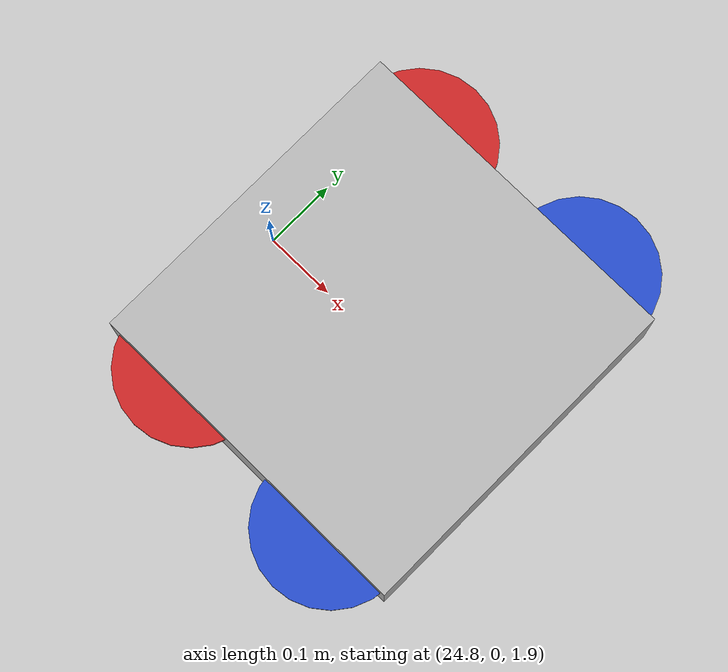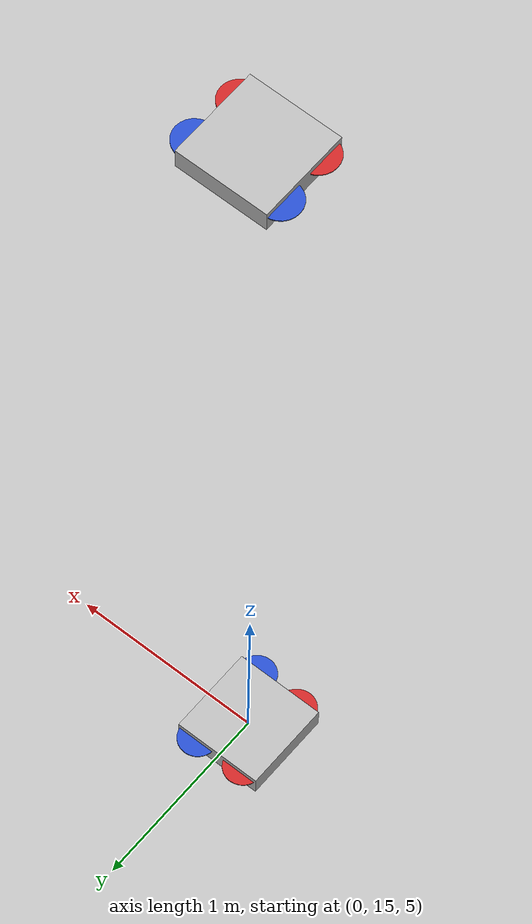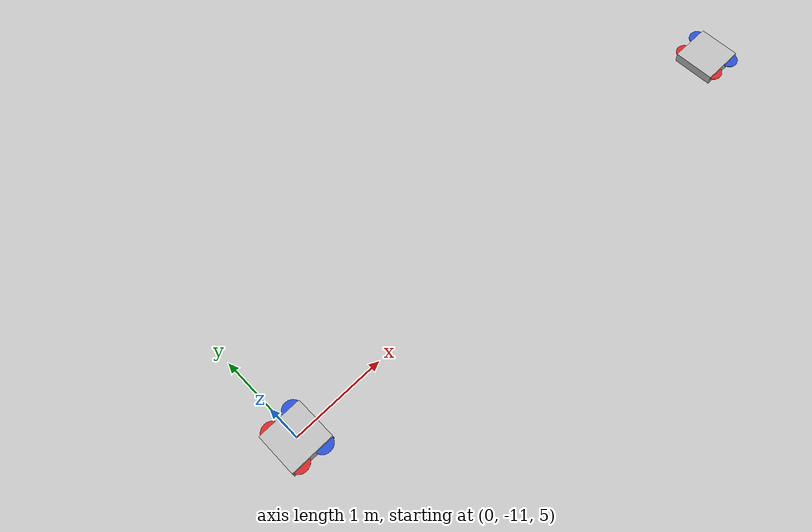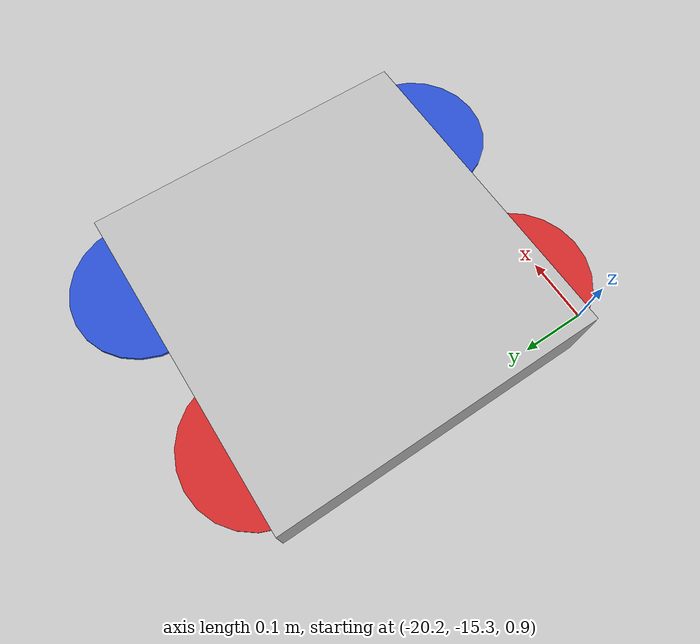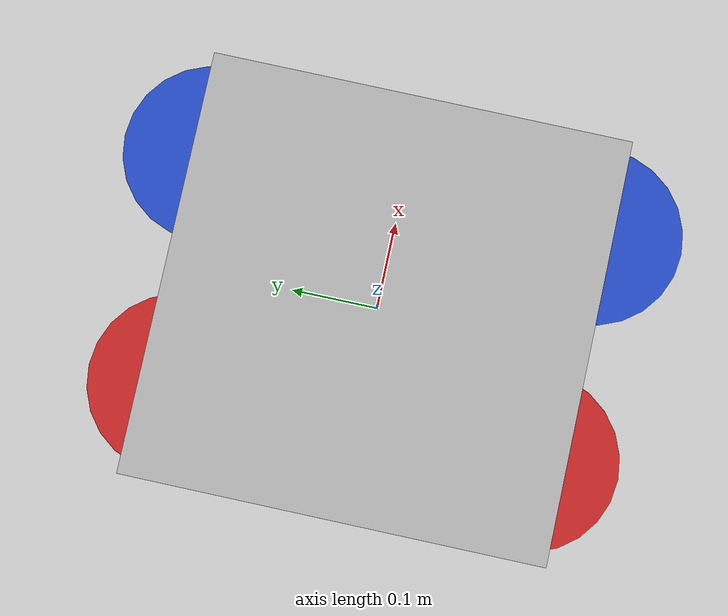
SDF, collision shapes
<?xml version='1.0'?>
<sdf version="1.10">
  <model name="ihunter">

    <include>
      <uri>model://sand_model/model.sdf</uri>
      <name>sand_model</name>
      <pose>0 0 0 0 0 0</pose>
    </include>

    <frame name="sand_frame" attached_to="sand_model::sand_link">
      <pose relative_to="__model__">0 0 0 0 0 0</pose>
    </frame>

    <include>
      <uri>model://radio_tower/model.sdf</uri>
      <name>tower_right</name>
      <pose relative_to="sand_frame">25 0 2 0 0 0</pose>
    </include>

    <include>
      <uri>model://radio_tower/model.sdf</uri>
      <name>tower_left</name>
      <pose relative_to="sand_frame">-22 0 -2 0 0 3.1416</pose>
    </include>

    <include>
      <uri>model://ground_station/model.sdf</uri>
      <name>gound_station_1</name>
      <pose relative_to="sand_frame">-20 -15 1 0 0 0</pose>
    </include>

    <include>
      <uri>model://ground_station/model.sdf</uri>
      <name>gound_station_2</name>
      <pose relative_to="sand_frame">20 15 3.5 0 0 0</pose>
    </include>

    <include>
      <uri>model://radar_station/model.sdf</uri>
      <name>radar_station</name>
      <pose relative_to="sand_frame">0 15 10 0 0 1.5705</pose>
    </include>

    <include>
      <uri>model://police_station/model.sdf</uri>
      <name>police_station_1</name>
      <pose relative_to="sand_frame">6 -11 5 0 0 0</pose>
    </include>
    <include>
      <uri>model://police_station/model.sdf</uri>
      <name>police_station_2</name>
      <pose relative_to="sand_frame">0 -11 5 0 0 0</pose>
    </include>

    <include>
      <uri>model://Pickup/model.sdf</uri>
      <name>Pickup</name>
      <pose relative_to="sand_frame">-24 10 -0.3 0 0 0</pose>
    </include>

    <include>
      <uri>model://red_box/model.sdf</uri>
      <name>red_box</name>
      <pose relative_to="sand_frame">200 100 6 0 0 0</pose>
    </include>
    <include>
      <uri>model://radar_pole/model.sdf</uri>
      <name>radar_pole</name>
      <pose relative_to="sand_frame">0 15 5 0 0 0</pose>
    </include>
  </model>
</sdf>

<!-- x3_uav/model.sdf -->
<sdf version="1.6">
    <model name="x3_uav">
        <pose>0 0 0.053302 0 0 0</pose>
        <link name="base_link">
            <pose frame="">0 0 0 0 -0 0</pose>
            <inertial>
                <pose frame="">0 0 0 0 -0 0</pose>
                <mass>1.5</mass>
                <inertia>
                  <ixx>0.025</ixx>
                  <ixy>0</ixy>
                  <ixz>0</ixz>
                  <iyy>0.009</iyy>
                  <iyz>0</iyz>
                  <izz>0.033</izz>
                </inertia>
            </inertial>
            <collision name="base_link_inertia_collision">
                <pose frame="">0 0 0 0 -0 0</pose>
                <geometry>
                    <box>
                        <size>0.47 0.47 0.11</size>
                    </box>
                </geometry>
            </collision>
            <visual name="base_link_inertia_visual">
                <pose frame="">0 0 0 0 -0 0</pose>
                <geometry>
                    <mesh>
                        <scale>1 1 1</scale>
                        <uri>model://x3_uav/meshes/x3.dae</uri>
                    </mesh>
                </geometry>
            </visual>
            <sensor name="air_pressure_sensor" type="air_pressure">
                <always_on>1</always_on>
                <update_rate>50</update_rate>
                <air_pressure>
                <pressure>
                    <noise type="gaussian">
                    <mean>0</mean>
                    <stddev>0.01</stddev>
                    </noise>
                </pressure>
                </air_pressure>
            </sensor>
            <sensor name="hit_contact" type="contact">
                <always_on>1</always_on>
                <update_rate>1000</update_rate>
                <topic>/target/hit_contact</topic>
                <contact>
                    <collision>base_link_inertia_collision</collision>
                    <topic>/target/hit_contact</topic>
                </contact>
            </sensor>
            <sensor name="imu_sensor" type="imu">
                <always_on>1</always_on>
                <update_rate>250</update_rate>
                <imu>
                    <enable_orientation>0</enable_orientation>
                    <angular_velocity>
                        <x>
                            <noise type="gaussian">
                                <mean>0</mean>
                                <stddev>0.009</stddev>
                                <bias_mean>0.00075</bias_mean>
                                <bias_stddev>0.005</bias_stddev>
                                <dynamic_bias_stddev>0.00002</dynamic_bias_stddev>
				<dynamic_bias_correlation_time>400.0</dynamic_bias_correlation_time>
				<precision>0.00025</precision>
                            </noise>
                        </x>
                        <y>
                            <noise type="gaussian">
                                <mean>0</mean>
                                <stddev>0.009</stddev>
                                <bias_mean>0.00075</bias_mean>
                                <bias_stddev>0.005</bias_stddev>
                                <dynamic_bias_stddev>0.00002</dynamic_bias_stddev>
				<dynamic_bias_correlation_time>400.0</dynamic_bias_correlation_time>
				<precision>0.00025</precision>
                            </noise>
                        </y>
                        <z>
                            <noise type="gaussian">
                                <mean>0</mean>
                                <stddev>0.009</stddev>
                                <bias_mean>0.00075</bias_mean>
                                <bias_stddev>0.005</bias_stddev>
                                <dynamic_bias_stddev>0.00002</dynamic_bias_stddev>
				<dynamic_bias_correlation_time>400.0</dynamic_bias_correlation_time>
				<precision>0.00025</precision>
                            </noise>
                        </z>
                    </angular_velocity>
                    <linear_acceleration>
                        <x>
                            <noise type="gaussian">
                                <mean>0</mean>
                                <stddev>0.021</stddev>
                                <bias_mean>0.05</bias_mean>
                                <bias_stddev>0.0075</bias_stddev>
                                <dynamic_bias_stddev>0.000375</dynamic_bias_stddev>
				<dynamic_bias_correlation_time>175.0</dynamic_bias_correlation_time>
				<precision>0.005</precision>
                            </noise>
                        </x>
                        <y>
                            <noise type="gaussian">
                                <mean>0</mean>
                                <stddev>0.021</stddev>
                                <bias_mean>0.05</bias_mean>
                                <bias_stddev>0.0075</bias_stddev>
                                <dynamic_bias_stddev>0.000375</dynamic_bias_stddev>
				<dynamic_bias_correlation_time>175.0</dynamic_bias_correlation_time>
				<precision>0.005</precision>
                            </noise>
                        </y>
                        <z>
                            <noise type="gaussian">
                                <mean>0</mean>
                                <stddev>0.021</stddev>
                                <bias_mean>0.05</bias_mean>
                                <bias_stddev>0.0075</bias_stddev>
                                <dynamic_bias_stddev>0.000375</dynamic_bias_stddev>
				<dynamic_bias_correlation_time>175.0</dynamic_bias_correlation_time>
				<precision>0.005</precision>
                            </noise>
                        </z>
                    </linear_acceleration>
                </imu>

            </sensor>
            <sensor name="air_pressure" type="air_pressure">
                <always_on>1</always_on>
                <update_rate>20</update_rate>
                <air_pressure>
                    <reference_altitude>0</reference_altitude>
                    <noise type="gaussian">
                        <mean>0.00000008</mean>
                    </noise>
                </air_pressure>
            </sensor>
            <sensor name="magnetometer" type="magnetometer">
                <always_on>1</always_on>
                <update_rate>20</update_rate>
                <magnetometer>
                    <x>
                        <noise type="gaussian">
                            <mean>0.000000080</mean>
                            <bias_mean>0.000000400</bias_mean>
                        </noise>
                    </x>
                    <y>
                        <noise type="gaussian">
                            <mean>0.000000080</mean>
                            <bias_mean>0.000000400</bias_mean>
                        </noise>
                    </y>
                    <z>
                        <noise type="gaussian">
                            <mean>0.000000080</mean>
                            <bias_mean>0.000000400</bias_mean>
                        </noise>
                    </z>
                </magnetometer>
            </sensor>

        </link>
        <link name="rotor_0">
            <pose frame="">0.13 -0.22 0.023 0 -0 0</pose>
            <inertial>
                <pose frame="">0 0 0 0 -0 0</pose>
                <mass>0.005</mass>
                <inertia>
                    <ixx>9.75e-07</ixx>
                    <ixy>0</ixy>
                    <ixz>0</ixz>
                    <iyy>4.17041e-05</iyy>
                    <iyz>0</iyz>
                    <izz>4.26041e-05</izz>
                </inertia>
            </inertial>
            <collision name="rotor_0_collision">
                <pose frame="">0 0 0 0 -0 0</pose>
                <geometry>
                    <cylinder>
                        <length>0.005</length>
                        <radius>0.1</radius>
                    </cylinder>
                </geometry>
                <surface>
                    <contact>
                        <ode/>
                    </contact>
                    <friction>
                        <ode/>
                    </friction>
                </surface>
            </collision>
            <visual name="rotor_0_visual">
                <pose frame="">0 0 0 0 -0 0</pose>
                <geometry>
                    <mesh>
                        <scale>0.1 0.1 0.1</scale>
                        <uri>model://x3_uav/meshes/propeller_ccw.dae</uri>
                    </mesh>
                </geometry>
                <material>
                    <diffuse>0 0 1 1</diffuse>
                    <script>
                        <name>Gazebo/Blue</name>
                        <uri>file://media/materials/scripts/gazebo.material</uri>
                    </script>
                </material>
                <cast_shadows>0</cast_shadows>
            </visual>
            <gravity>1</gravity>
            <velocity_decay/>
        </link>
        <joint name="rotor_0_joint" type="revolute">
            <child>rotor_0</child>
            <parent>base_link</parent>
            <axis>
                <xyz>0 0 1</xyz>
                <limit>
                    <lower>-1e+16</lower>
                    <upper>1e+16</upper>
                </limit>
                <dynamics>
                    <spring_reference>0</spring_reference>
                    <spring_stiffness>0</spring_stiffness>
                </dynamics>
                <use_parent_model_frame>1</use_parent_model_frame>
            </axis>
        </joint>
        <link name="rotor_1">
            <pose frame="">-0.13 0.2 0.023 0 -0 0</pose>
            <inertial>
                <pose frame="">0 0 0 0 -0 0</pose>
                <mass>0.005</mass>
                <inertia>
                    <ixx>9.75e-07</ixx>
                    <ixy>0</ixy>
                    <ixz>0</ixz>
                    <iyy>4.17041e-05</iyy>
                    <iyz>0</iyz>
                    <izz>4.26041e-05</izz>
                </inertia>
            </inertial>
            <collision name="rotor_1_collision">
                <pose frame="">0 0 0 0 -0 0</pose>
                <geometry>
                    <cylinder>
                        <length>0.005</length>
                        <radius>0.1</radius>
                    </cylinder>
                </geometry>
                <surface>
                    <contact>
                        <ode/>
                    </contact>
                    <friction>
                        <ode/>
                    </friction>
                </surface>
            </collision>
            <visual name="rotor_1_visual">
                <pose frame="">0 0 0 0 -0 0</pose>
                <geometry>
                    <mesh>
                        <scale>0.1 0.1 0.1</scale>
                        <uri>model://x3_uav/meshes/propeller_ccw.dae</uri>
                    </mesh>
                </geometry>
                <material>
                    <diffuse>1 0 0 1</diffuse>
                    <script>
                        <name>Gazebo/Red</name>
                        <uri>file://media/materials/scripts/gazebo.material</uri>
                    </script>
                </material>
                <cast_shadows>0</cast_shadows>
            </visual>
            <gravity>1</gravity>
            <velocity_decay/>
        </link>
        <joint name="rotor_1_joint" type="revolute">
            <child>rotor_1</child>
            <parent>base_link</parent>
            <axis>
                <xyz>0 0 1</xyz>
                <limit>
                    <lower>-1e+16</lower>
                    <upper>1e+16</upper>
                </limit>
                <dynamics>
                    <spring_reference>0</spring_reference>
                    <spring_stiffness>0</spring_stiffness>
                </dynamics>
                <use_parent_model_frame>1</use_parent_model_frame>
            </axis>
        </joint>
        <link name="rotor_2">
            <pose frame="">0.13 0.22 0.023 0 -0 0</pose>
            <inertial>
                <pose frame="">0 0 0 0 -0 0</pose>
                <mass>0.005</mass>
                <inertia>
                    <ixx>9.75e-07</ixx>
                    <ixy>0</ixy>
                    <ixz>0</ixz>
                    <iyy>4.17041e-05</iyy>
                    <iyz>0</iyz>
                    <izz>4.26041e-05</izz>
                </inertia>
            </inertial>
            <collision name="rotor_2_collision">
                <pose frame="">0 0 0 0 -0 0</pose>
                <geometry>
                    <cylinder>
                        <length>0.005</length>
                        <radius>0.1</radius>
                    </cylinder>
                </geometry>
                <surface>
                    <contact>
                        <ode/>
                    </contact>
                    <friction>
                        <ode/>
                    </friction>
                </surface>
            </collision>
            <visual name="rotor_2_visual">
                <pose frame="">0 0 0 0 -0 0</pose>
                <geometry>
                    <mesh>
                        <scale>0.1 0.1 0.1</scale>
                        <uri>model://x3_uav/meshes/propeller_cw.dae</uri>
                    </mesh>
                </geometry>
                <material>
                    <diffuse>0 0 1 1</diffuse>
                    <script>
                        <name>Gazebo/Blue</name>
                        <uri>file://media/materials/scripts/gazebo.material</uri>
                    </script>
                </material>
                <cast_shadows>0</cast_shadows>
            </visual>
            <gravity>1</gravity>
            <velocity_decay/>
        </link>
        <joint name="rotor_2_joint" type="revolute">
            <child>rotor_2</child>
            <parent>base_link</parent>
            <axis>
                <xyz>0 0 1</xyz>
                <limit>
                    <lower>-1e+16</lower>
                    <upper>1e+16</upper>
                </limit>
                <dynamics>
                    <spring_reference>0</spring_reference>
                    <spring_stiffness>0</spring_stiffness>
                </dynamics>
                <use_parent_model_frame>1</use_parent_model_frame>
            </axis>
        </joint>
        <link name="rotor_3">
            <pose frame="">-0.13 -0.2 0.023 0 -0 0</pose>
            <inertial>
                <pose frame="">0 0 0 0 -0 0</pose>
                <mass>0.005</mass>
                <inertia>
                    <ixx>9.75e-07</ixx>
                    <ixy>0</ixy>
                    <ixz>0</ixz>
                    <iyy>4.17041e-05</iyy>
                    <iyz>0</iyz>
                    <izz>4.26041e-05</izz>
                </inertia>
            </inertial>
            <collision name="rotor_3_collision">
                <pose frame="">0 0 0 0 -0 0</pose>
                <geometry>
                    <cylinder>
                        <length>0.005</length>
                        <radius>0.1</radius>
                    </cylinder>
                </geometry>
                <surface>
                    <contact>
                        <ode/>
                    </contact>
                    <friction>
                        <ode/>
                    </friction>
                </surface>
            </collision>
            <visual name="rotor_3_visual">
                <pose frame="">0 0 0 0 -0 0</pose>
                <geometry>
                    <mesh>
                        <scale>0.1 0.1 0.1</scale>
                        <uri>model://x3_uav/meshes/propeller_cw.dae</uri>
                    </mesh>
                </geometry>
                <material>
                    <diffuse>1 0 0 1</diffuse>
                    <script>
                        <name>Gazebo/Red</name>
                        <uri>file://media/materials/scripts/gazebo.material</uri>
                    </script>
                </material>
                <cast_shadows>0</cast_shadows>
            </visual>
            <gravity>1</gravity>
            <velocity_decay/>
        </link>
        <joint name="rotor_3_joint" type="revolute">
            <child>rotor_3</child>
            <parent>base_link</parent>
            <axis>
                <xyz>0 0 1</xyz>
                <limit>
                    <lower>-1e+16</lower>
                    <upper>1e+16</upper>
                </limit>
                <dynamics>
                    <spring_reference>0</spring_reference>
                    <spring_stiffness>0</spring_stiffness>
                </dynamics>
                <use_parent_model_frame>1</use_parent_model_frame>
            </axis>
        </joint>

        <plugin filename="ignition-gazebo-multicopter-motor-model-system" name="ignition::gazebo::systems::MulticopterMotorModel">
            <jointName>rotor_0_joint</jointName>
            <linkName>rotor_0</linkName>
            <turningDirection>ccw</turningDirection>
            <timeConstantUp>0.0125</timeConstantUp>
            <timeConstantDown>0.025</timeConstantDown>
            <maxRotVelocity>1000.0</maxRotVelocity>
            <motorConstant>8.54858e-06</motorConstant>
            <momentConstant>0.016</momentConstant>
            <commandSubTopic>command/motor_speed</commandSubTopic>
            <motorNumber>0</motorNumber>
            <rotorDragCoefficient>8.06428e-05</rotorDragCoefficient>
            <rollingMomentCoefficient>1e-06</rollingMomentCoefficient>
            <rotorVelocitySlowdownSim>10</rotorVelocitySlowdownSim>
            <motorType>velocity</motorType>
        </plugin>
        <plugin filename="gz-sim-multicopter-motor-model-system" name="gz::sim::systems::MulticopterMotorModel">
            <jointName>rotor_1_joint</jointName>
            <linkName>rotor_1</linkName>
            <turningDirection>ccw</turningDirection>
            <timeConstantUp>0.0125</timeConstantUp>
            <timeConstantDown>0.025</timeConstantDown>
            <maxRotVelocity>1000.0</maxRotVelocity>
            <motorConstant>8.54858e-06</motorConstant>
            <momentConstant>0.016</momentConstant>
            <commandSubTopic>command/motor_speed</commandSubTopic>
            <motorNumber>1</motorNumber>
            <rotorDragCoefficient>8.06428e-05</rotorDragCoefficient>
            <rollingMomentCoefficient>1e-06</rollingMomentCoefficient>
            <rotorVelocitySlowdownSim>10</rotorVelocitySlowdownSim>
            <motorType>velocity</motorType>
        </plugin>
            <plugin filename="gz-sim-multicopter-motor-model-system" name="gz::sim::systems::MulticopterMotorModel">
            <jointName>rotor_2_joint</jointName>
            <linkName>rotor_2</linkName>
            <turningDirection>cw</turningDirection>
            <timeConstantUp>0.0125</timeConstantUp>
            <timeConstantDown>0.025</timeConstantDown>
            <maxRotVelocity>1000.0</maxRotVelocity>
            <motorConstant>8.54858e-06</motorConstant>
            <momentConstant>0.016</momentConstant>
            <commandSubTopic>command/motor_speed</commandSubTopic>
            <motorNumber>2</motorNumber>
            <rotorDragCoefficient>8.06428e-05</rotorDragCoefficient>
            <rollingMomentCoefficient>1e-06</rollingMomentCoefficient>
            <rotorVelocitySlowdownSim>10</rotorVelocitySlowdownSim>
            <motorType>velocity</motorType>
        </plugin>
        <plugin filename="gz-sim-multicopter-motor-model-system" name="gz::sim::systems::MulticopterMotorModel">
            <jointName>rotor_3_joint</jointName>
            <linkName>rotor_3</linkName>
            <turningDirection>cw</turningDirection>
            <timeConstantUp>0.0125</timeConstantUp>
            <timeConstantDown>0.025</timeConstantDown>
            <maxRotVelocity>1000.0</maxRotVelocity>
            <motorConstant>8.54858e-06</motorConstant>
            <momentConstant>0.016</momentConstant>
            <commandSubTopic>command/motor_speed</commandSubTopic>
            <motorNumber>3</motorNumber>
            <rotorDragCoefficient>8.06428e-05</rotorDragCoefficient>
            <rollingMomentCoefficient>1e-06</rollingMomentCoefficient>
            <rotorVelocitySlowdownSim>10</rotorVelocitySlowdownSim>
            <motorType>velocity</motorType>
        </plugin>
    </model>
</sdf>
